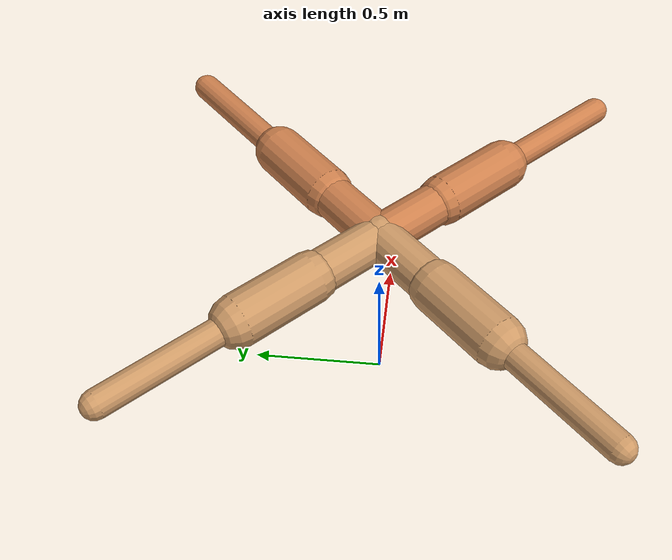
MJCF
<mujoco model="ant">
  <compiler angle="degree" coordinate="local" inertiafromgeom="true"/>
  <option integrator="RK4" timestep="0.01"/>
  <custom>
    <numeric data="0.0 0.0 0.55 1.0 0.0 0.0 0.0 0.0 1.0 0.0 -1.0 0.0 -1.0 0.0 1.0" name="init_qpos"/>
  </custom>
  <default>
    <joint armature="1" damping="1" limited="true"/>
    <geom conaffinity="0" condim="3" density="5.0" friction="1.5 0.1 0.1" margin="0.01" rgba="0.8 0.6 0.4 1"/>
  </default>
  <worldbody>
    <body name="torso" pos="0 0 0.7389510594934072">
      <geom name="torso_geom" pos="0 0 0" size="0.08393001881307366" type="sphere"/>
      <!--joint armature="0" damping="0" limited="false" margin="0.01" name="root" pos="0 0 0" type="free"/-->
      <body name="front_left_leg" pos="0 0 0">
        <geom fromto="0.0 0.0 0.0 0.21151478731400922 0.21151478731400922 0.0" name="aux_1_geom" size="0.08" type="capsule" rgba=".8 .5 .3 1"/>
        <body name="aux_1" pos="0.21151478731400922 0.21151478731400922 0">
          <joint axis="0 0 1" name="hip_1" pos="0.0 0.0 0.0" range="-40 40" type="hinge"/>
          <geom fromto="0.0 0.0 0.0 0.21151478731400922 0.21151478731400922 0.0" name="left_leg_geom" size="-0.09423561978092306" type="capsule" rgba=".8 .5 .3 1"/>
          <body pos="0.21151478731400922 0.21151478731400922 0" name="front_left_foot">
            <joint axis="-1 1 0" name="ankle_1" pos="0.0 0.0 0.0" range="30 100" type="hinge"/>
            <geom fromto="0.0 0.0 0.0 0.36208524371200773 0.36208524371200773 0.0" name="left_ankle_geom" size="-0.050324275411231564" type="capsule" rgba=".8 .5 .3 1"/>
          </body>
        </body>
      </body>
      <body name="front_right_leg" pos="0 0 0">
        <geom fromto="0.0 0.0 0.0 -0.21151478731400922 0.21151478731400922 0.0" name="aux_2_geom" size="0.08" type="capsule"/>
        <body name="aux_2" pos="-0.21151478731400922 0.21151478731400922 0">
          <joint axis="0 0 1" name="hip_2" pos="0.0 0.0 0.0" range="-40 40" type="hinge"/>
          <geom fromto="0.0 0.0 0.0 -0.21151478731400922 0.21151478731400922 0.0" name="right_leg_geom" size="-0.09423561978092306" type="capsule"/>
          <body pos="-0.21151478731400922 0.21151478731400922 0" name="front_right_foot">
            <joint axis="1 1 0" name="ankle_2" pos="0.0 0.0 0.0" range="-100 -30" type="hinge"/>
            <geom fromto="0.0 0.0 0.0 -0.36208524371200773 0.36208524371200773 0.0" name="right_ankle_geom" size="-0.050324275411231564" type="capsule"/>
          </body>
        </body>
      </body>
      <body name="left_back_leg" pos="0 0 0">
        <geom fromto="0.0 0.0 0.0 -0.21151478731400922 -0.21151478731400922 0.0" name="aux_3_geom" size="0.08" type="capsule"/>
        <body name="aux_3" pos="-0.21151478731400922 -0.21151478731400922 0">
          <joint axis="0 0 1" name="hip_3" pos="0.0 0.0 0.0" range="-40 40" type="hinge"/>
          <geom fromto="0.0 0.0 0.0 -0.21151478731400922 -0.21151478731400922 0.0" name="back_leg_geom" size="-0.09423561978092306" type="capsule"/>
          <body pos="-0.21151478731400922 -0.21151478731400922 0" name="left_back_foot">
            <joint axis="-1 1 0" name="ankle_3" pos="0.0 0.0 0.0" range="-100 -30" type="hinge"/>
            <geom fromto="0.0 0.0 0.0 -0.36208524371200773 -0.36208524371200773 0.0" name="third_ankle_geom" size="-0.050324275411231564" type="capsule"/>
          </body>
        </body>
      </body>
      <body name="right_back_leg" pos="0 0 0">
        <geom fromto="0.0 0.0 0.0 0.21151478731400922 -0.21151478731400922 0.0" name="aux_4_geom" size="0.08" type="capsule" rgba=".8 .5 .3 1"/>
        <body name="aux_4" pos="0.21151478731400922 -0.21151478731400922 0">
          <joint axis="0 0 1" name="hip_4" pos="0.0 0.0 0.0" range="-40 40" type="hinge"/>
          <geom fromto="0.0 0.0 0.0 0.21151478731400922 -0.21151478731400922 0.0" name="rightback_leg_geom" size="-0.09423561978092306" type="capsule" rgba=".8 .5 .3 1"/>
          <body pos="0.21151478731400922 -0.21151478731400922 0" name="right_back_foot">
            <joint axis="1 1 0" name="ankle_4" pos="0.0 0.0 0.0" range="30 100" type="hinge"/>
            <geom fromto="0.0 0.0 0.0 0.36208524371200773 -0.36208524371200773 0.0" name="fourth_ankle_geom" size="-0.050324275411231564" type="capsule" rgba=".8 .5 .3 1"/>
          </body>
        </body>
      </body>
    </body>
  </worldbody>
  <actuator>
    <motor ctrllimited="true" ctrlrange="-1.0 1.0" joint="hip_4" gear="150"/>
    <motor ctrllimited="true" ctrlrange="-1.0 1.0" joint="ankle_4" gear="150"/>
    <motor ctrllimited="true" ctrlrange="-1.0 1.0" joint="hip_1" gear="150"/>
    <motor ctrllimited="true" ctrlrange="-1.0 1.0" joint="ankle_1" gear="150"/>
    <motor ctrllimited="true" ctrlrange="-1.0 1.0" joint="hip_2" gear="150"/>
    <motor ctrllimited="true" ctrlrange="-1.0 1.0" joint="ankle_2" gear="150"/>
    <motor ctrllimited="true" ctrlrange="-1.0 1.0" joint="hip_3" gear="150"/>
    <motor ctrllimited="true" ctrlrange="-1.0 1.0" joint="ankle_3" gear="150"/>
  </actuator>
</mujoco>
